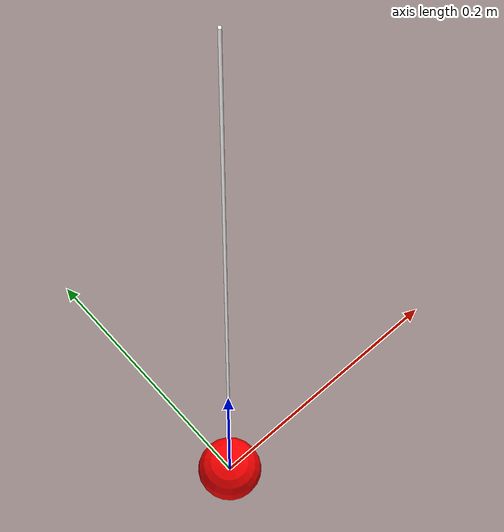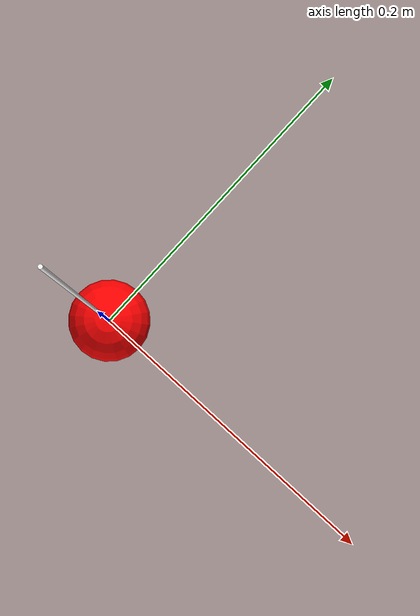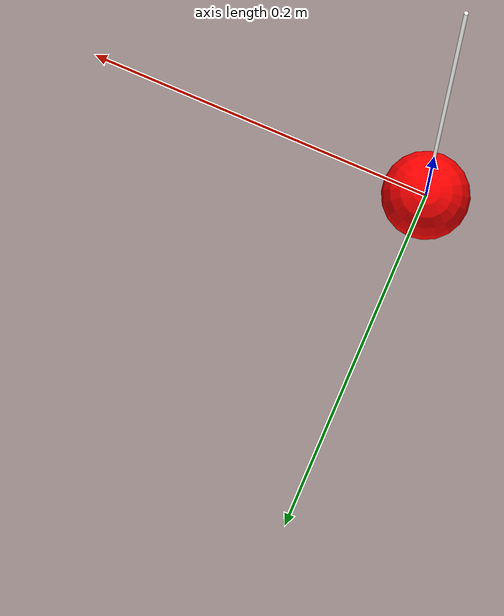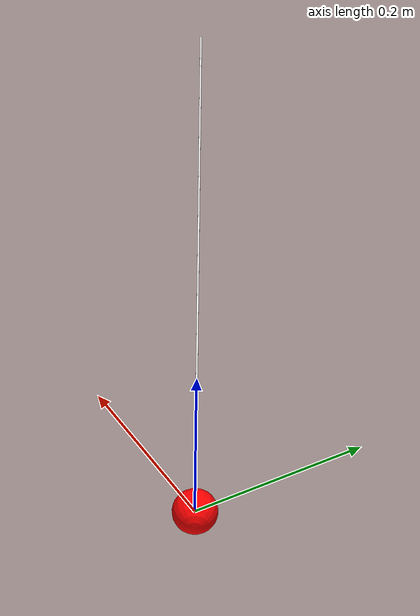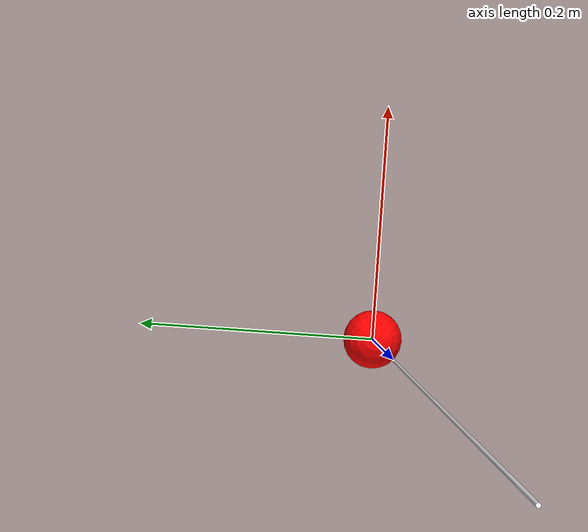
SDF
<?xml version="1.0" encoding="UTF-8"?>
<sdf version='1.9'>
  <model name='slung_load'>
    <plugin filename="gz-sim-odometry-publisher-system" name="gz::sim::systems::OdometryPublisher">
      <odom_frame>world</odom_frame>
      <robot_base_frame>load</robot_base_frame>
      <odom_topic>/model/px4vision_sls_0/load_odom</odom_topic>
      <odom_publish_frequency>100</odom_publish_frequency>
      <dimensions>3</dimensions>
    </plugin>

    <self_collide>false</self_collide>
    <static>false</static>

    <link name='load'>
      <pose>0 0 0 0 0 0</pose>
      <inertial>
        <mass>0.3</mass>
        <inertia>
          <ixx>0.0000625</ixx>
          <ixy>0</ixy>
          <ixz>0</ixz>
          <iyy>0.0000625</iyy>
          <iyz>0</iyz>
          <izz>0.0000625</izz>
        </inertia>
      </inertial>
      <visual name='load_visual'>
        <geometry>
          <sphere>
            <radius>0.025</radius>
          </sphere>
        </geometry>
        <material>
          <ambient>1.0 0.0 0.0 1.0</ambient>
          <diffuse>1.0 0.0 0.0 1.0</diffuse>
        </material>
      </visual>
      <gravity>1</gravity>
    </link>

    <link name='pendulum'>
      <pose>0 0 0.425 0 0 0</pose>
      <inertial>
        <mass>0.01</mass>
        <inertia>
          <ixx>0.00060208</ixx>
          <ixy>0</ixy>
          <ixz>0</ixz>
          <iyy>0.00060208</iyy>
          <iyz>0</iyz>
          <izz>0.000000005</izz>
        </inertia>
      </inertial>
      <visual name='pendulum_visual'>
        <geometry>
          <cylinder>
            <radius>0.001</radius>
            <length>0.75</length>
          </cylinder>
        </geometry>
        <material>
          <ambient>1.0 1.0 1.0 1.0</ambient>
          <diffuse>1.0 1.0 1.0 1.0</diffuse>
        </material>
      </visual>
      <gravity>1</gravity>
    </link>

    <joint name='load_joint' type='ball'>
      <pose>0 0 0 0 0 0</pose>
      <child>load</child>
      <parent>pendulum</parent>
    </joint>
  </model>
</sdf>
